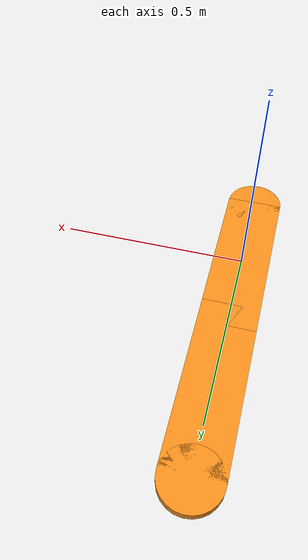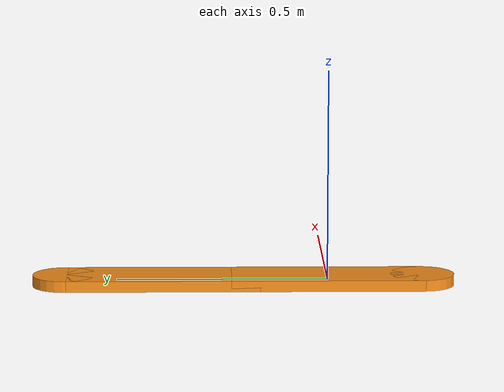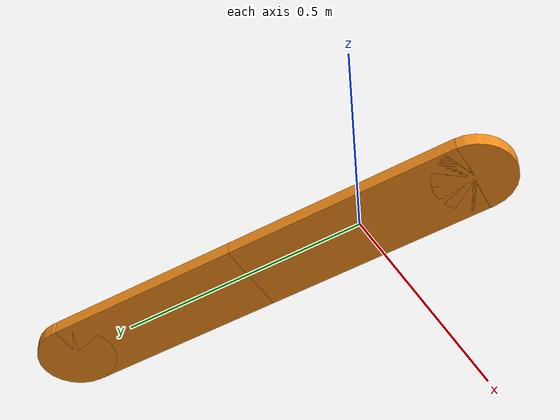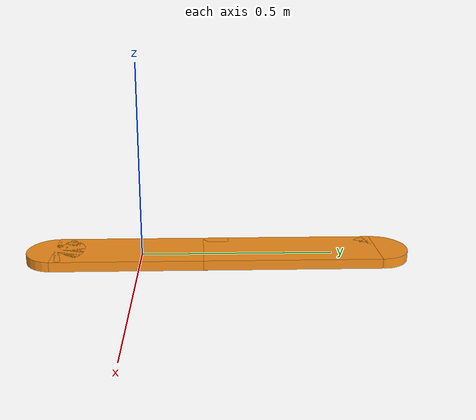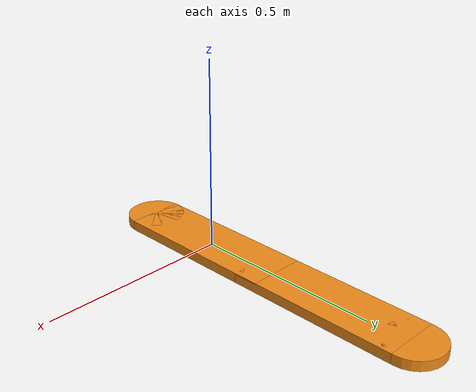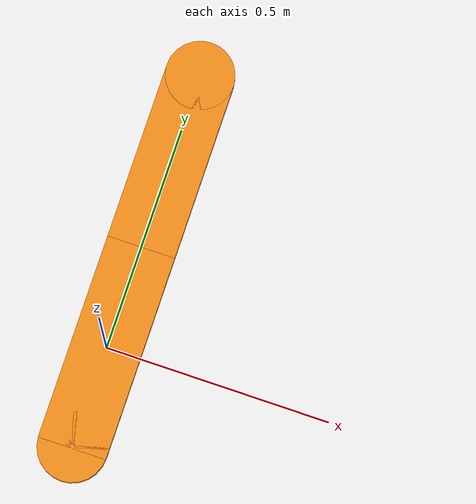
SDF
<?xml version='1.0'?>
<sdf version='1.6'>
  <model name='crooked_path'>

    <pose> 0 0 0 0 0 0 </pose>
    <static>1</static>
    <self_collide>0</self_collide>

    <link name='round0'>
      <pose>0 0.625 0 0 0 0</pose>
      <visual name='visual'>
        <pose frame=''>0 0 0 0 -0 0</pose>
        <geometry>
          <cylinder>
            <radius>0.0762</radius>
            <length>0.026174</length>
          </cylinder>
        </geometry>
        <material>
          <script>
            <uri>file://media/materials/scripts/gazebo.material</uri>
            <name>Gazebo/Orange</name>
          </script>
        </material>
      </visual>
      <collision name='collision'>
        <laser_retro>0</laser_retro>
        <max_contacts>10</max_contacts>
        <pose frame=''>0 0 0 0 -0 0</pose>
        <geometry>
          <cylinder>
            <radius>0.0762</radius>
            <length>0.026174</length>
          </cylinder>
        </geometry>
      </collision>
    </link>

    <link name='path0'>
      <pose>0 0 0 0 0 0</pose>
      <visual name='visual'>
        <pose frame=''>0 0 0 0 -0 0</pose>
        <geometry>
          <box>
            <size>0.1524 0.4572 0.026174</size>
          </box>
        </geometry>
        <material>
          <script>
            <uri>file://media/materials/scripts/gazebo.material</uri>
            <name>Gazebo/Orange</name>
          </script>
        </material>
      </visual>
      <collision name='collision'>
        <laser_retro>0</laser_retro>
        <max_contacts>10</max_contacts>
        <pose frame=''>0 0 0 0 -0 0</pose>
        <geometry>
          <box>
            <size>0.1524 0.4572 0.026174</size>
          </box>
        </geometry>
      </collision>
    </link>

    <link name='path1'>
      <pose>0 0 0 0 0 0</pose>

      <visual name='visual'>
        <pose frame=''>0 0.39 0 0 -0 0</pose>
        <geometry>
          <box>
            <size>0.1524 0.4572 0.026174</size>
          </box>
        </geometry>
        <material>
          <script>
            <uri>file://media/materials/scripts/gazebo.material</uri>
            <name>Gazebo/Orange</name>
          </script>
        </material>
      </visual>

      <collision name='collision'>
        <laser_retro>0</laser_retro>
        <max_contacts>10</max_contacts>
        <pose frame=''>0 0 0 0 -0 0</pose>
        <geometry>
          <box>
            <size>0.1524 0.4572 0.026174</size>
          </box>
        </geometry>
      </collision>
    </link>

    <link name='round1'>
      <pose>0 -0.225 0 0 0 0</pose>
      <visual name='visual'>
        <pose frame=''>0 0 0 0 -0 0</pose>
        <geometry>
          <cylinder>
            <radius>0.0762</radius>
            <length>0.026174</length>
          </cylinder>
        </geometry>
        <material>
          <script>
            <uri>file://media/materials/scripts/gazebo.material</uri>
            <name>Gazebo/Orange</name>
          </script>
        </material>
      </visual>
      <collision name='collision'>
        <laser_retro>0</laser_retro>
        <max_contacts>10</max_contacts>
        <pose frame=''>0 0 0 0 -0 0</pose>
        <geometry>
          <cylinder>
            <radius>0.0762</radius>
            <length>0.026174</length>
          </cylinder>
        </geometry>
      </collision>
    </link>

  </model>

</sdf>
